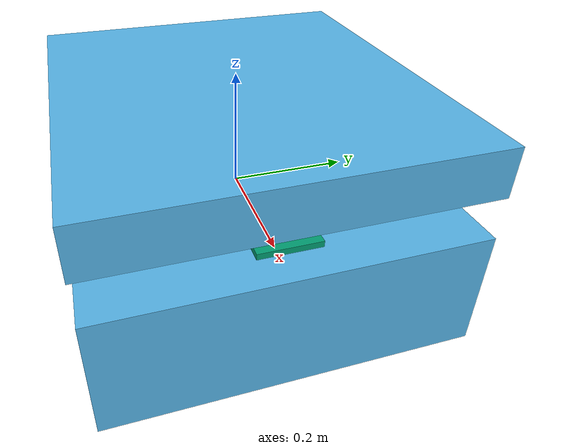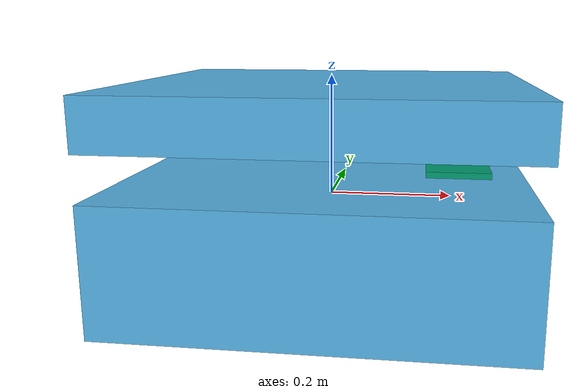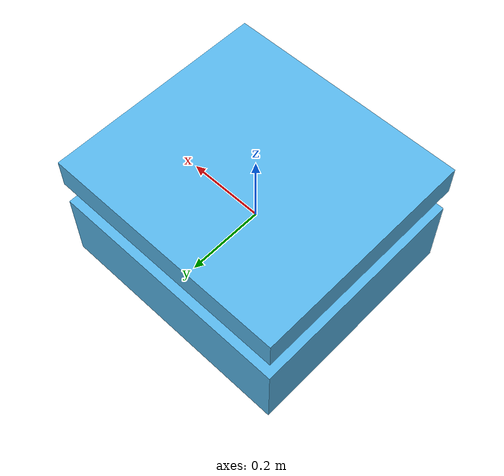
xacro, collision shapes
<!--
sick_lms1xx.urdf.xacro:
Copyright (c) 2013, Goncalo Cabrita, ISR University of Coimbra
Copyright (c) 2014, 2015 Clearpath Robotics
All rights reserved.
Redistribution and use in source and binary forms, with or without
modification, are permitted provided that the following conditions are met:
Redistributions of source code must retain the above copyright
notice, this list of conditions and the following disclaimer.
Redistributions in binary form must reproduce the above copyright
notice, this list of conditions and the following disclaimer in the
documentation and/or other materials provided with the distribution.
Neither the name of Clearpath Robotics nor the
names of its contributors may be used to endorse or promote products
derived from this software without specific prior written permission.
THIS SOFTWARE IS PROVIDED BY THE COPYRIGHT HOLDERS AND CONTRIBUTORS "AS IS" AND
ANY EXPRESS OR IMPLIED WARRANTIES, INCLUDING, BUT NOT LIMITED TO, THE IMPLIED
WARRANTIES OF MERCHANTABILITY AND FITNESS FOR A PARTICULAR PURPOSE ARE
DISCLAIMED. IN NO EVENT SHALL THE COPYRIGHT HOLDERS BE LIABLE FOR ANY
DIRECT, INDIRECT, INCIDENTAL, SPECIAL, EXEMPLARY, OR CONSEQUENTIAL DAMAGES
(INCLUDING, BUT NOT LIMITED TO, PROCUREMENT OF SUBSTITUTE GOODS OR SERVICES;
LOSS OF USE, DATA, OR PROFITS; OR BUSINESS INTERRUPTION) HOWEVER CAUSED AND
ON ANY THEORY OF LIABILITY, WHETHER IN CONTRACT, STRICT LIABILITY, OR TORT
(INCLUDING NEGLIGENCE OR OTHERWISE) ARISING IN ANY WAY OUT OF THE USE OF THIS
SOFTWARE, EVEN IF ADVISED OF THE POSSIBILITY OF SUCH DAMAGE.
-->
<?xml version="1.0"?>
<robot xmlns:sensor="http://playerstage.sourceforge.net/gazebo/xmlschema/#sensor"
       xmlns:controller="http://playerstage.sourceforge.net/gazebo/xmlschema/#controller"
       xmlns:interface="http://playerstage.sourceforge.net/gazebo/xmlschema/#interface"
       xmlns:xacro="http://ros.org/wiki/xacro"
       name="narko" >

  <!-- The following xacro:included files set up definitions of parts of the robot body -->
  <!-- misc common stuff? -->
  <xacro:include filename="$(find narko_description)/urdf/common.xacro" />

  <!-- robot base -->
  <xacro:include filename="$(find narko_description)/urdf/narko/narko_base.urdf.xacro" />

  <!-- materials for visualization -->
  <xacro:include filename="$(find narko_description)/urdf/materials.urdf.xacro" />

  <!-- sensors -->
  <xacro:include filename="$(find narko_description)/urdf/sensors/sick_lms1xx.urdf.xacro"/>

  <xacro:narko_base name="base"/>

  <xacro:sick_lms1xx>
    <origin xyz="0.211 0 0.05" rpy="0 0 0"/>
  </xacro:sick_lms1xx>

  <!-- base laser front -->

</robot>

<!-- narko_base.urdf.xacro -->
<robot xmlns:sensor="http://playerstage.sourceforge.net/gazebo/xmlschema/#sensor"
       xmlns:controller="http://playerstage.sourceforge.net/gazebo/xmlschema/#controller"
       xmlns:interface="http://playerstage.sourceforge.net/gazebo/xmlschema/#interface"
       xmlns:xacro="http://ros.org/wiki/xacro">

  <!-- simplified box collision geometry for base -->
  <xacro:property name="base_size_x" value="0.635"/>
  <xacro:property name="base_size_y" value="0.582"/>
  <xacro:property name="base_size_z" value="0.2"/>
  <xacro:property name="base_mass" value="40.0"/>

  <xacro:macro name="narko_base" params="name">
    <!-- position controller -->
    <gazebo>
      <plugin name="base_controller" filename="libgazebo_ros_planar_move.so">
        <commandTopic>cmd_vel</commandTopic>
        <odometryTopic>odom</odometryTopic>
        <odometryFrame>odom</odometryFrame>
        <odometryRate>50.0</odometryRate>
        <robotBaseFrame>base_footprint</robotBaseFrame>
      </plugin>
    </gazebo>

    <link name="${name}_footprint" />
    <joint name="${name}_footprint_joint" type="fixed">
      <child link="${name}_link"/>
      <parent link="${name}_footprint"/>
    </joint>

    <link name="${name}_link">
      <inertial>
        <mass value="${base_mass}"/>
        <origin xyz="0 0 0"/>
        <inertia ixx="5.652232699207" ixy="-0.009719934438" ixz="1.293988226423" iyy="5.669473158652" iyz="-0.007379583694" izz="3.683196351726"/>
      </inertial>
      <visual>
        <origin xyz="0 0 0" rpy="0 0 1.571"/>
        <geometry>
          <mesh filename="package://narko_description/meshes/narko/narko.dae" scale="1 1 1"/>
        </geometry>
      </visual>
      <collision>
        <origin xyz="0 0 -0.06" rpy="0 0 0"/>
        <geometry>
           <box size="${base_size_x} ${base_size_y} ${base_size_z}" />
        </geometry>
      </collision>
      <collision>
        <origin xyz="0 0 0.15" rpy="0 0 0"/>
        <geometry>
           <box size="${base_size_x} ${base_size_y} 0.08" />
        </geometry>
      </collision>
    </link>

  </xacro:macro>
</robot>

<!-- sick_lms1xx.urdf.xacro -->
<robot xmlns:xacro="http://www.ros.org/wiki/xacro">

  <xacro:macro name="sick_lms1xx" params="*origin frame:=base_laser_front_link topic:=base_scan sample_size:=540 update_rate:=10
               min_angle:=-2.35619 max_angle:=2.35619 min_range:=0.1 max_range:=30.0 robot_namespace:=/" >
    <joint name="$base_laser_front_sick_laser_joint" type="fixed">
      <axis xyz="0 1 0" />
      <xacro:insert_block name="origin"/>
      <parent link="base_link"/>
      <child link="${frame}"/>
    </joint>
    <link name="${frame}">
      <inertial>
        <mass value="1.1" />
        <origin xyz="0 0 0" />
        <inertia ixx="${0.0833333 * 1.1 * (0.102*0.102 + 0.152*0.152)}" ixy="0.0" ixz="0.0"
          iyy="${0.0833333 * 1.1 * (0.105*0.105 + 0.152*0.152)}" iyz="0.0"
          izz="${0.0833333 * 1.1 * (0.105*0.105 + 0.102*0.102)}" />
      </inertial>
      <visual>
        <origin xyz="0 0 0" rpy="0 0 0" />
        <geometry>
          <!-- Origin of this mesh is the focal point of the LIDAR. -->
          <mesh filename="package://narko_description/meshes/sensors/sick-lms1xx.dae" />
        </geometry>
      </visual>
      <collision>
        <origin xyz="0 0 -0.05" rpy="0 0 0" />
        <geometry>
          <box size="0.105 0.1 0.1" />
        </geometry>
      </collision>
    </link>

    <gazebo reference="${frame}">
      <turnGravityOff>true</turnGravityOff>
      <sensor type="ray" name="${frame}">
        <pose>0 0 0 0 0 0</pose>
        <visualize>false</visualize>
        <update_rate>${update_rate}</update_rate>
        <ray>
          <scan>
            <horizontal>
              <samples>${sample_size}</samples>
              <resolution>1</resolution>
              <min_angle>${min_angle}</min_angle>
              <max_angle>${max_angle}</max_angle>
            </horizontal>
          </scan>
          <range>
            <min>${min_range}</min>
            <max>${max_range}</max>
            <resolution>0.01</resolution>
          </range>
          <noise>
            <type>gaussian</type>
            <mean>0.0</mean>
            <stddev>0.001</stddev>
          </noise>
        </ray>
        <plugin name="gazebo_ros_laser" filename="libgazebo_ros_laser.so">
          <topicName>${topic}</topicName>
          <frameName>${frame}</frameName>
          <robotNamespace>${robot_namespace}</robotNamespace>
        </plugin>
      </sensor>
    </gazebo>
  </xacro:macro>
</robot>
